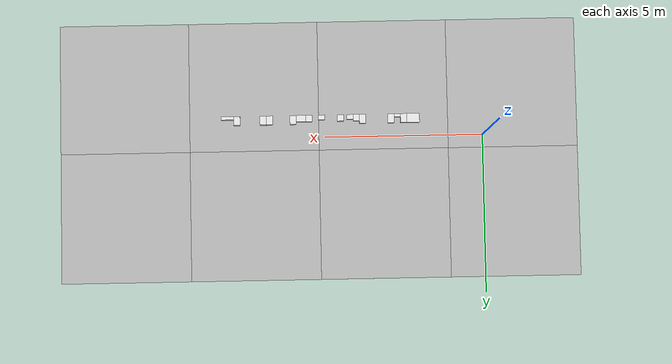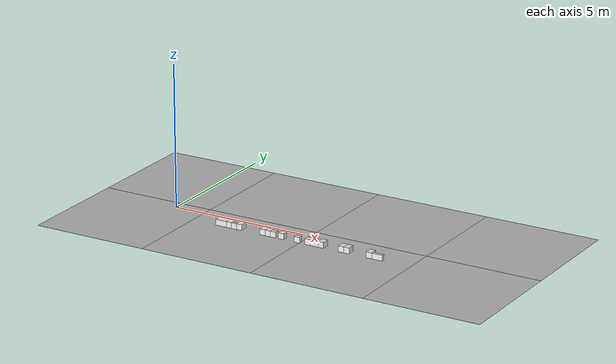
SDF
<sdf version="1.6">
 <world name="default">
  <light name="sun_light" type="directional">
   <pose>0 0 10 0 -0 0</pose>
   <diffuse>0.5 0.5 0.5 1</diffuse>
   <specular>0.1 0.1 0.1 1</specular>
   <direction>0.1 0.1 -0.9</direction>
   <attenuation>
    <range>20</range>
    <constant>0.5</constant>
    <linear>0.01</linear>
    <quadratic>0.001</quadratic>
   </attenuation>
  </light>
  <model name="Tile/0-0">
   <static>1</static>
   <link name="link">
    <collision name="collision">
     <geometry><plane><normal>0 0 1</normal><size>4.096 4.096</size></plane></geometry>
     <surface><friction><ode><mu>100</mu><mu2>50</mu2></ode></friction></surface>
    </collision>
    <visual name="visual">
     <cast_shadows>0</cast_shadows>
     <geometry><plane><normal>0 0 1</normal><size>4.096 4.096</size></plane></geometry>
     <material>
      <script>
       <uri>file://materials/scripts</uri>
       <uri>file://materials/textures</uri>
       <name>Tile/aa44efc093d15b0d016b671cb8dad8b9b5925cd42bc6b331ef31decf4ba6863e</name>
      </script>
     </material>
    </visual>
   </link>
   <pose>-0.952 -1.6520000000000001 0 0 -0 0</pose>
  </model>
  <model name="Tile/0-1">
   <static>1</static>
   <link name="link">
    <collision name="collision">
     <geometry><plane><normal>0 0 1</normal><size>4.096 4.096</size></plane></geometry>
     <surface><friction><ode><mu>100</mu><mu2>50</mu2></ode></friction></surface>
    </collision>
    <visual name="visual">
     <cast_shadows>0</cast_shadows>
     <geometry><plane><normal>0 0 1</normal><size>4.096 4.096</size></plane></geometry>
     <material>
      <script>
       <uri>file://materials/scripts</uri>
       <uri>file://materials/textures</uri>
       <name>Tile/6681b896b1587d54cb69aadeb5fb7247b4d6d500490292053e67105ac88ca889</name>
      </script>
     </material>
    </visual>
   </link>
   <pose>-0.952 2.444 0 0 -0 0</pose>
  </model>
  <model name="Tile/1-0">
   <static>1</static>
   <link name="link">
    <collision name="collision">
     <geometry><plane><normal>0 0 1</normal><size>4.096 4.096</size></plane></geometry>
     <surface><friction><ode><mu>100</mu><mu2>50</mu2></ode></friction></surface>
    </collision>
    <visual name="visual">
     <cast_shadows>0</cast_shadows>
     <geometry><plane><normal>0 0 1</normal><size>4.096 4.096</size></plane></geometry>
     <material>
      <script>
       <uri>file://materials/scripts</uri>
       <uri>file://materials/textures</uri>
       <name>Tile/5a139ca13c9e8ae7e51cede8fd27ad1665371a7efd7d79bbd08464b418b2286e</name>
      </script>
     </material>
    </visual>
   </link>
   <pose>3.144 -1.6520000000000001 0 0 -0 0</pose>
  </model>
  <model name="Tile/1-1">
   <static>1</static>
   <link name="link">
    <collision name="collision">
     <geometry><plane><normal>0 0 1</normal><size>4.096 4.096</size></plane></geometry>
     <surface><friction><ode><mu>100</mu><mu2>50</mu2></ode></friction></surface>
    </collision>
    <visual name="visual">
     <cast_shadows>0</cast_shadows>
     <geometry><plane><normal>0 0 1</normal><size>4.096 4.096</size></plane></geometry>
     <material>
      <script>
       <uri>file://materials/scripts</uri>
       <uri>file://materials/textures</uri>
       <name>Tile/13957a6de1f2afce18d7f1f64dacc2f21295e26ccf498256b0e1a51002cd5706</name>
      </script>
     </material>
    </visual>
   </link>
   <pose>3.144 2.444 0 0 -0 0</pose>
  </model>
  <model name="Tile/2-0">
   <static>1</static>
   <link name="link">
    <collision name="collision">
     <geometry><plane><normal>0 0 1</normal><size>4.096 4.096</size></plane></geometry>
     <surface><friction><ode><mu>100</mu><mu2>50</mu2></ode></friction></surface>
    </collision>
    <visual name="visual">
     <cast_shadows>0</cast_shadows>
     <geometry><plane><normal>0 0 1</normal><size>4.096 4.096</size></plane></geometry>
     <material>
      <script>
       <uri>file://materials/scripts</uri>
       <uri>file://materials/textures</uri>
       <name>Tile/d4befcf8d9cf7551dea9b4a952819d58801a4bea459858103a58b4de57acb64b</name>
      </script>
     </material>
    </visual>
   </link>
   <pose>7.24 -1.6520000000000001 0 0 -0 0</pose>
  </model>
  <model name="Tile/2-1">
   <static>1</static>
   <link name="link">
    <collision name="collision">
     <geometry><plane><normal>0 0 1</normal><size>4.096 4.096</size></plane></geometry>
     <surface><friction><ode><mu>100</mu><mu2>50</mu2></ode></friction></surface>
    </collision>
    <visual name="visual">
     <cast_shadows>0</cast_shadows>
     <geometry><plane><normal>0 0 1</normal><size>4.096 4.096</size></plane></geometry>
     <material>
      <script>
       <uri>file://materials/scripts</uri>
       <uri>file://materials/textures</uri>
       <name>Tile/13957a6de1f2afce18d7f1f64dacc2f21295e26ccf498256b0e1a51002cd5706</name>
      </script>
     </material>
    </visual>
   </link>
   <pose>7.24 2.444 0 0 -0 0</pose>
  </model>
  <model name="Tile/3-0">
   <static>1</static>
   <link name="link">
    <collision name="collision">
     <geometry><plane><normal>0 0 1</normal><size>4.096 4.096</size></plane></geometry>
     <surface><friction><ode><mu>100</mu><mu2>50</mu2></ode></friction></surface>
    </collision>
    <visual name="visual">
     <cast_shadows>0</cast_shadows>
     <geometry><plane><normal>0 0 1</normal><size>4.096 4.096</size></plane></geometry>
     <material>
      <script>
       <uri>file://materials/scripts</uri>
       <uri>file://materials/textures</uri>
       <name>Tile/1c23de3078bbeccedcda9b63546cbcf0673bc4ccec6e7212818b876aa7449bbf</name>
      </script>
     </material>
    </visual>
   </link>
   <pose>11.336 -1.6520000000000001 0 0 -0 0</pose>
  </model>
  <model name="Tile/3-1">
   <static>1</static>
   <link name="link">
    <collision name="collision">
     <geometry><plane><normal>0 0 1</normal><size>4.096 4.096</size></plane></geometry>
     <surface><friction><ode><mu>100</mu><mu2>50</mu2></ode></friction></surface>
    </collision>
    <visual name="visual">
     <cast_shadows>0</cast_shadows>
     <geometry><plane><normal>0 0 1</normal><size>4.096 4.096</size></plane></geometry>
     <material>
      <script>
       <uri>file://materials/scripts</uri>
       <uri>file://materials/textures</uri>
       <name>Tile/46fa4afc2b65f052e47a09b160b3bbadb349de1e3e3e6a8a637aace7fd5ac1e2</name>
      </script>
     </material>
    </visual>
   </link>
   <pose>11.336 2.444 0 0 -0 0</pose>
  </model>
  <model name="Obstacle/-5/0">
   <pose>2.2 -0.5599999999999999 0.1 0 0 -0.0</pose>
   <link name="link">
    <inertial>
     <mass>10</mass>
     <inertia>
      <ixx>0.166667</ixx>
      <ixy>0</ixy>
      <ixz>0</ixz>
      <iyy>0.166667</iyy>
      <iyz>0</iyz>
      <izz>0.166667</izz>
     </inertia>
    </inertial>
    <collision name="collision"><geometry><box><size>0.4 0.28 0.2</size></box></geometry></collision>
    <visual name="visual">
     <geometry><box><size>0.4 0.28 0.2</size></box></geometry>
     <material>
      <script><name>Gazebo/White</name><uri>file://media/materials/scripts/gazebo.material</uri></script>
     </material>
    </visual>
   </link>
  </model>
  <model name="Obstacle/-9/0">
   <pose>2.5 -0.5599999999999999 0.1 0 0 -0.0</pose>
   <link name="link">
    <inertial>
     <mass>10</mass>
     <inertia>
      <ixx>0.166667</ixx>
      <ixy>0</ixy>
      <ixz>0</ixz>
      <iyy>0.166667</iyy>
      <iyz>0</iyz>
      <izz>0.166667</izz>
     </inertia>
    </inertial>
    <collision name="collision"><geometry><box><size>0.2 0.28 0.2</size></box></geometry></collision>
    <visual name="visual">
     <geometry><box><size>0.2 0.28 0.2</size></box></geometry>
     <material>
      <script><name>Gazebo/White</name><uri>file://media/materials/scripts/gazebo.material</uri></script>
     </material>
    </visual>
   </link>
  </model>
  <model name="Obstacle/-13/0">
   <pose>2.7 -0.6499999999999999 0.1 0 0 -0.0</pose>
   <link name="link">
    <inertial>
     <mass>10</mass>
     <inertia>
      <ixx>0.166667</ixx>
      <ixy>0</ixy>
      <ixz>0</ixz>
      <iyy>0.166667</iyy>
      <iyz>0</iyz>
      <izz>0.166667</izz>
     </inertia>
    </inertial>
    <collision name="collision"><geometry><box><size>0.2 0.1 0.2</size></box></geometry></collision>
    <visual name="visual">
     <geometry><box><size>0.2 0.1 0.2</size></box></geometry>
     <material>
      <script><name>Gazebo/White</name><uri>file://media/materials/scripts/gazebo.material</uri></script>
     </material>
    </visual>
   </link>
  </model>
  <model name="Obstacle/-17/0">
   <pose>2.9000000000000004 -0.5599999999999999 0.1 0 0 -0.0</pose>
   <link name="link">
    <inertial>
     <mass>10</mass>
     <inertia>
      <ixx>0.166667</ixx>
      <ixy>0</ixy>
      <ixz>0</ixz>
      <iyy>0.166667</iyy>
      <iyz>0</iyz>
      <izz>0.166667</izz>
     </inertia>
    </inertial>
    <collision name="collision"><geometry><box><size>0.2 0.28 0.2</size></box></geometry></collision>
    <visual name="visual">
     <geometry><box><size>0.2 0.28 0.2</size></box></geometry>
     <material>
      <script><name>Gazebo/White</name><uri>file://media/materials/scripts/gazebo.material</uri></script>
     </material>
    </visual>
   </link>
  </model>
  <model name="Obstacle/-24/0">
   <pose>3.8000000000000003 -0.5599999999999999 0.1 0 0 -0.0</pose>
   <link name="link">
    <inertial>
     <mass>10</mass>
     <inertia>
      <ixx>0.166667</ixx>
      <ixy>0</ixy>
      <ixz>0</ixz>
      <iyy>0.166667</iyy>
      <iyz>0</iyz>
      <izz>0.166667</izz>
     </inertia>
    </inertial>
    <collision name="collision"><geometry><box><size>0.2 0.28 0.2</size></box></geometry></collision>
    <visual name="visual">
     <geometry><box><size>0.2 0.28 0.2</size></box></geometry>
     <material>
      <script><name>Gazebo/White</name><uri>file://media/materials/scripts/gazebo.material</uri></script>
     </material>
    </visual>
   </link>
  </model>
  <model name="Obstacle/-28/0">
   <pose>4.0 -0.6 0.1 0 0 -0.0</pose>
   <link name="link">
    <inertial>
     <mass>10</mass>
     <inertia>
      <ixx>0.166667</ixx>
      <ixy>0</ixy>
      <ixz>0</ixz>
      <iyy>0.166667</iyy>
      <iyz>0</iyz>
      <izz>0.166667</izz>
     </inertia>
    </inertial>
    <collision name="collision"><geometry><box><size>0.2 0.2 0.2</size></box></geometry></collision>
    <visual name="visual">
     <geometry><box><size>0.2 0.2 0.2</size></box></geometry>
     <material>
      <script><name>Gazebo/White</name><uri>file://media/materials/scripts/gazebo.material</uri></script>
     </material>
    </visual>
   </link>
  </model>
  <model name="Obstacle/-32/0">
   <pose>4.2 -0.625 0.1 0 0 -0.0</pose>
   <link name="link">
    <inertial>
     <mass>10</mass>
     <inertia>
      <ixx>0.166667</ixx>
      <ixy>0</ixy>
      <ixz>0</ixz>
      <iyy>0.166667</iyy>
      <iyz>0</iyz>
      <izz>0.166667</izz>
     </inertia>
    </inertial>
    <collision name="collision"><geometry><box><size>0.2 0.15 0.2</size></box></geometry></collision>
    <visual name="visual">
     <geometry><box><size>0.2 0.15 0.2</size></box></geometry>
     <material>
      <script><name>Gazebo/White</name><uri>file://media/materials/scripts/gazebo.material</uri></script>
     </material>
    </visual>
   </link>
  </model>
  <model name="Obstacle/-39/0">
   <pose>4.5 -0.6 0.1 0 0 -0.0</pose>
   <link name="link">
    <inertial>
     <mass>10</mass>
     <inertia>
      <ixx>0.166667</ixx>
      <ixy>0</ixy>
      <ixz>0</ixz>
      <iyy>0.166667</iyy>
      <iyz>0</iyz>
      <izz>0.166667</izz>
     </inertia>
    </inertial>
    <collision name="collision"><geometry><box><size>0.2 0.2 0.2</size></box></geometry></collision>
    <visual name="visual">
     <geometry><box><size>0.2 0.2 0.2</size></box></geometry>
     <material>
      <script><name>Gazebo/White</name><uri>file://media/materials/scripts/gazebo.material</uri></script>
     </material>
    </visual>
   </link>
  </model>
  <model name="Obstacle/-46/0">
   <pose>5.1000000000000005 -0.625 0.1 0 0 -0.0</pose>
   <link name="link">
    <inertial>
     <mass>10</mass>
     <inertia>
      <ixx>0.166667</ixx>
      <ixy>0</ixy>
      <ixz>0</ixz>
      <iyy>0.166667</iyy>
      <iyz>0</iyz>
      <izz>0.166667</izz>
     </inertia>
    </inertial>
    <collision name="collision"><geometry><box><size>0.2 0.15 0.2</size></box></geometry></collision>
    <visual name="visual">
     <geometry><box><size>0.2 0.15 0.2</size></box></geometry>
     <material>
      <script><name>Gazebo/White</name><uri>file://media/materials/scripts/gazebo.material</uri></script>
     </material>
    </visual>
   </link>
  </model>
  <model name="Obstacle/-53/0">
   <pose>5.500000000000001 -0.6 0.1 0 0 -0.0</pose>
   <link name="link">
    <inertial>
     <mass>10</mass>
     <inertia>
      <ixx>0.166667</ixx>
      <ixy>0</ixy>
      <ixz>0</ixz>
      <iyy>0.166667</iyy>
      <iyz>0</iyz>
      <izz>0.166667</izz>
     </inertia>
    </inertial>
    <collision name="collision"><geometry><box><size>0.2 0.2 0.2</size></box></geometry></collision>
    <visual name="visual">
     <geometry><box><size>0.2 0.2 0.2</size></box></geometry>
     <material>
      <script><name>Gazebo/White</name><uri>file://media/materials/scripts/gazebo.material</uri></script>
     </material>
    </visual>
   </link>
  </model>
  <model name="Obstacle/-57/0">
   <pose>5.750000000000002 -0.6 0.1 0 0 -0.0</pose>
   <link name="link">
    <inertial>
     <mass>10</mass>
     <inertia>
      <ixx>0.166667</ixx>
      <ixy>0</ixy>
      <ixz>0</ixz>
      <iyy>0.166667</iyy>
      <iyz>0</iyz>
      <izz>0.166667</izz>
     </inertia>
    </inertial>
    <collision name="collision"><geometry><box><size>0.3 0.2 0.2</size></box></geometry></collision>
    <visual name="visual">
     <geometry><box><size>0.3 0.2 0.2</size></box></geometry>
     <material>
      <script><name>Gazebo/White</name><uri>file://media/materials/scripts/gazebo.material</uri></script>
     </material>
    </visual>
   </link>
  </model>
  <model name="Obstacle/-61/0">
   <pose>6.000000000000001 -0.5599999999999999 0.1 0 0 -0.0</pose>
   <link name="link">
    <inertial>
     <mass>10</mass>
     <inertia>
      <ixx>0.166667</ixx>
      <ixy>0</ixy>
      <ixz>0</ixz>
      <iyy>0.166667</iyy>
      <iyz>0</iyz>
      <izz>0.166667</izz>
     </inertia>
    </inertial>
    <collision name="collision"><geometry><box><size>0.2 0.28 0.2</size></box></geometry></collision>
    <visual name="visual">
     <geometry><box><size>0.2 0.28 0.2</size></box></geometry>
     <material>
      <script><name>Gazebo/White</name><uri>file://media/materials/scripts/gazebo.material</uri></script>
     </material>
    </visual>
   </link>
  </model>
  <model name="Obstacle/-68/0">
   <pose>6.750000000000001 -0.5599999999999999 0.1 0 0 -0.0</pose>
   <link name="link">
    <inertial>
     <mass>10</mass>
     <inertia>
      <ixx>0.166667</ixx>
      <ixy>0</ixy>
      <ixz>0</ixz>
      <iyy>0.166667</iyy>
      <iyz>0</iyz>
      <izz>0.166667</izz>
     </inertia>
    </inertial>
    <collision name="collision"><geometry><box><size>0.2 0.28 0.2</size></box></geometry></collision>
    <visual name="visual">
     <geometry><box><size>0.2 0.28 0.2</size></box></geometry>
     <material>
      <script><name>Gazebo/White</name><uri>file://media/materials/scripts/gazebo.material</uri></script>
     </material>
    </visual>
   </link>
  </model>
  <model name="Obstacle/-72/0">
   <pose>6.950000000000001 -0.5599999999999999 0.1 0 0 -0.0</pose>
   <link name="link">
    <inertial>
     <mass>10</mass>
     <inertia>
      <ixx>0.166667</ixx>
      <ixy>0</ixy>
      <ixz>0</ixz>
      <iyy>0.166667</iyy>
      <iyz>0</iyz>
      <izz>0.166667</izz>
     </inertia>
    </inertial>
    <collision name="collision"><geometry><box><size>0.2 0.28 0.2</size></box></geometry></collision>
    <visual name="visual">
     <geometry><box><size>0.2 0.28 0.2</size></box></geometry>
     <material>
      <script><name>Gazebo/White</name><uri>file://media/materials/scripts/gazebo.material</uri></script>
     </material>
    </visual>
   </link>
  </model>
  <model name="Obstacle/-79/0">
   <pose>7.780000000000001 -0.5599999999999999 0.1 0 0 -0.0</pose>
   <link name="link">
    <inertial>
     <mass>10</mass>
     <inertia>
      <ixx>0.166667</ixx>
      <ixy>0</ixy>
      <ixz>0</ixz>
      <iyy>0.166667</iyy>
      <iyz>0</iyz>
      <izz>0.166667</izz>
     </inertia>
    </inertial>
    <collision name="collision"><geometry><box><size>0.2 0.28 0.2</size></box></geometry></collision>
    <visual name="visual">
     <geometry><box><size>0.2 0.28 0.2</size></box></geometry>
     <material>
      <script><name>Gazebo/White</name><uri>file://media/materials/scripts/gazebo.material</uri></script>
     </material>
    </visual>
   </link>
  </model>
  <model name="Obstacle/-83/0">
   <pose>8.080000000000002 -0.6499999999999999 0.1 0 0 -0.0</pose>
   <link name="link">
    <inertial>
     <mass>10</mass>
     <inertia>
      <ixx>0.166667</ixx>
      <ixy>0</ixy>
      <ixz>0</ixz>
      <iyy>0.166667</iyy>
      <iyz>0</iyz>
      <izz>0.166667</izz>
     </inertia>
    </inertial>
    <collision name="collision"><geometry><box><size>0.4 0.1 0.2</size></box></geometry></collision>
    <visual name="visual">
     <geometry><box><size>0.4 0.1 0.2</size></box></geometry>
     <material>
      <script><name>Gazebo/White</name><uri>file://media/materials/scripts/gazebo.material</uri></script>
     </material>
    </visual>
   </link>
  </model>
 </world>
</sdf>
